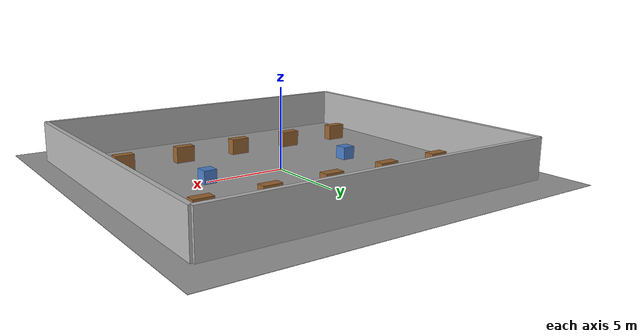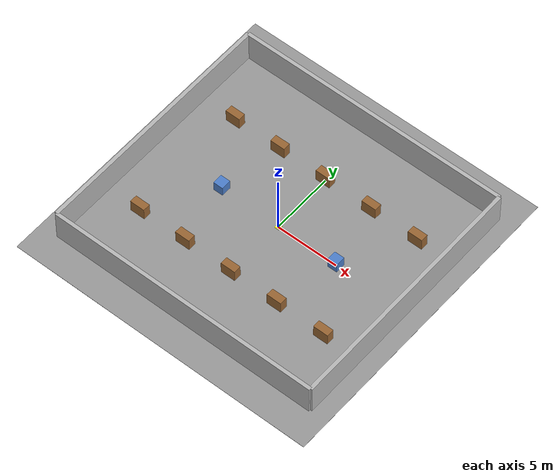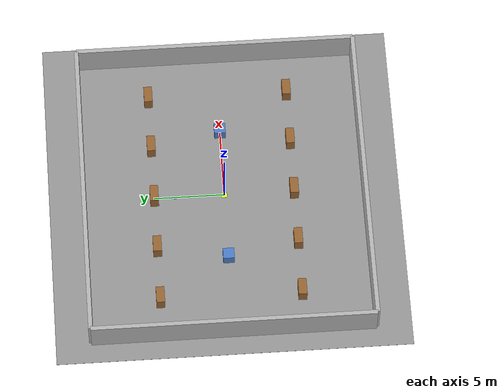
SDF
<?xml version="1.0" ?>
<!--
  TEST 3 — Mapping & Localization (harici model YOK, gzserver çökmesin)
  Duvarlar + basit kutu engeller; SLAM için yeterli.
-->
<sdf version="1.6">
  <world name="test_mapping">

    <physics type="ode">
      <real_time_update_rate>1000.0</real_time_update_rate>
      <max_step_size>0.001</max_step_size>
      <real_time_factor>1.0</real_time_factor>
    </physics>

    <scene>
      <ambient>0.4 0.4 0.4 1</ambient>
      <background>0.65 0.65 0.65 1</background>
      <shadows>true</shadows>
    </scene>

    <light name="sun" type="directional">
      <cast_shadows>true</cast_shadows>
      <pose>0 0 12 0 0 0</pose>
      <diffuse>0.85 0.85 0.85 1</diffuse>
      <specular>0.2 0.2 0.2 1</specular>
      <direction>-0.5 0.1 -0.9</direction>
    </light>

    <!-- Zemin (inline, model yok) -->
    <model name="ground_plane">
      <static>true</static>
      <pose>0 0 -0.01 0 0 0</pose>
      <link name="link">
        <collision name="col">
          <geometry><box><size>25 25 0.02</size></box></geometry>
        </collision>
        <visual name="vis">
          <geometry><box><size>25 25 0.02</size></box></geometry>
          <material><ambient>0.5 0.5 0.5 1</ambient><diffuse>0.6 0.6 0.6 1</diffuse></material>
        </visual>
      </link>
    </model>

    <!-- Dış Duvarlar -->
    <model name="wall_north">
      <static>true</static><pose>0 10 1.25 0 0 0</pose>
      <link name="link">
        <collision name="col"><geometry><box><size>22 0.3 2.5</size></box></geometry></collision>
        <visual name="vis">
          <geometry><box><size>22 0.3 2.5</size></box></geometry>
          <material><ambient>0.72 0.72 0.72 1</ambient></material>
        </visual>
      </link>
    </model>
    <model name="wall_south">
      <static>true</static><pose>0 -10 1.25 0 0 0</pose>
      <link name="link">
        <collision name="col"><geometry><box><size>22 0.3 2.5</size></box></geometry></collision>
        <visual name="vis">
          <geometry><box><size>22 0.3 2.5</size></box></geometry>
          <material><ambient>0.72 0.72 0.72 1</ambient></material>
        </visual>
      </link>
    </model>
    <model name="wall_east">
      <static>true</static><pose>11 0 1.25 0 0 0</pose>
      <link name="link">
        <collision name="col"><geometry><box><size>0.3 20 2.5</size></box></geometry></collision>
        <visual name="vis">
          <geometry><box><size>0.3 20 2.5</size></box></geometry>
          <material><ambient>0.72 0.72 0.72 1</ambient></material>
        </visual>
      </link>
    </model>
    <model name="wall_west">
      <static>true</static><pose>-11 0 1.25 0 0 0</pose>
      <link name="link">
        <collision name="col"><geometry><box><size>0.3 20 2.5</size></box></geometry></collision>
        <visual name="vis">
          <geometry><box><size>0.3 20 2.5</size></box></geometry>
          <material><ambient>0.72 0.72 0.72 1</ambient></material>
        </visual>
      </link>
    </model>

    <!-- Engel kutuları (raf yerine, SLAM için) -->
    <model name="obstacle_n1">
      <static>true</static><pose>-8 5 0.5 0 0 0</pose>
      <link name="link">
        <collision name="col"><geometry><box><size>1.2 0.6 1.0</size></box></geometry></collision>
        <visual name="vis"><geometry><box><size>1.2 0.6 1.0</size></box></geometry><material><ambient>0.6 0.4 0.2 1</ambient></material></visual>
      </link>
    </model>
    <model name="obstacle_n2">
      <static>true</static><pose>-4 5 0.5 0 0 0</pose>
      <link name="link">
        <collision name="col"><geometry><box><size>1.2 0.6 1.0</size></box></geometry></collision>
        <visual name="vis"><geometry><box><size>1.2 0.6 1.0</size></box></geometry><material><ambient>0.6 0.4 0.2 1</ambient></material></visual>
      </link>
    </model>
    <model name="obstacle_n3">
      <static>true</static><pose>0 5 0.5 0 0 0</pose>
      <link name="link">
        <collision name="col"><geometry><box><size>1.2 0.6 1.0</size></box></geometry></collision>
        <visual name="vis"><geometry><box><size>1.2 0.6 1.0</size></box></geometry><material><ambient>0.6 0.4 0.2 1</ambient></material></visual>
      </link>
    </model>
    <model name="obstacle_n4">
      <static>true</static><pose>4 5 0.5 0 0 0</pose>
      <link name="link">
        <collision name="col"><geometry><box><size>1.2 0.6 1.0</size></box></geometry></collision>
        <visual name="vis"><geometry><box><size>1.2 0.6 1.0</size></box></geometry><material><ambient>0.6 0.4 0.2 1</ambient></material></visual>
      </link>
    </model>
    <model name="obstacle_n5">
      <static>true</static><pose>8 5 0.5 0 0 0</pose>
      <link name="link">
        <collision name="col"><geometry><box><size>1.2 0.6 1.0</size></box></geometry></collision>
        <visual name="vis"><geometry><box><size>1.2 0.6 1.0</size></box></geometry><material><ambient>0.6 0.4 0.2 1</ambient></material></visual>
      </link>
    </model>
    <model name="obstacle_s1">
      <static>true</static><pose>-8 -5 0.5 0 0 0</pose>
      <link name="link">
        <collision name="col"><geometry><box><size>1.2 0.6 1.0</size></box></geometry></collision>
        <visual name="vis"><geometry><box><size>1.2 0.6 1.0</size></box></geometry><material><ambient>0.6 0.4 0.2 1</ambient></material></visual>
      </link>
    </model>
    <model name="obstacle_s2">
      <static>true</static><pose>-4 -5 0.5 0 0 0</pose>
      <link name="link">
        <collision name="col"><geometry><box><size>1.2 0.6 1.0</size></box></geometry></collision>
        <visual name="vis"><geometry><box><size>1.2 0.6 1.0</size></box></geometry><material><ambient>0.6 0.4 0.2 1</ambient></material></visual>
      </link>
    </model>
    <model name="obstacle_s3">
      <static>true</static><pose>0 -5 0.5 0 0 0</pose>
      <link name="link">
        <collision name="col"><geometry><box><size>1.2 0.6 1.0</size></box></geometry></collision>
        <visual name="vis"><geometry><box><size>1.2 0.6 1.0</size></box></geometry><material><ambient>0.6 0.4 0.2 1</ambient></material></visual>
      </link>
    </model>
    <model name="obstacle_s4">
      <static>true</static><pose>4 -5 0.5 0 0 0</pose>
      <link name="link">
        <collision name="col"><geometry><box><size>1.2 0.6 1.0</size></box></geometry></collision>
        <visual name="vis"><geometry><box><size>1.2 0.6 1.0</size></box></geometry><material><ambient>0.6 0.4 0.2 1</ambient></material></visual>
      </link>
    </model>
    <model name="obstacle_s5">
      <static>true</static><pose>8 -5 0.5 0 0 0</pose>
      <link name="link">
        <collision name="col"><geometry><box><size>1.2 0.6 1.0</size></box></geometry></collision>
        <visual name="vis"><geometry><box><size>1.2 0.6 1.0</size></box></geometry><material><ambient>0.6 0.4 0.2 1</ambient></material></visual>
      </link>
    </model>
    <model name="obstacle_center_l">
      <static>true</static><pose>-5 0 0.4 0 0 0</pose>
      <link name="link">
        <collision name="col"><geometry><box><size>0.8 0.8 0.8</size></box></geometry></collision>
        <visual name="vis"><geometry><box><size>0.8 0.8 0.8</size></box></geometry><material><ambient>0.3 0.5 0.8 1</ambient></material></visual>
      </link>
    </model>
    <model name="obstacle_center_r">
      <static>true</static><pose>5 0 0.4 0 0 0</pose>
      <link name="link">
        <collision name="col"><geometry><box><size>0.8 0.8 0.8</size></box></geometry></collision>
        <visual name="vis"><geometry><box><size>0.8 0.8 0.8</size></box></geometry><material><ambient>0.3 0.5 0.8 1</ambient></material></visual>
      </link>
    </model>

    <!-- Robot spawn işaretçisi (sarı kare) -->
    <model name="spawn_marker">
      <static>true</static>
      <pose>0 0 0.005 0 0 0</pose>
      <link name="link">
        <visual name="v">
          <geometry><box><size>0.4 0.4 0.01</size></box></geometry>
          <material><ambient>1 1 0 1</ambient></material>
        </visual>
      </link>
    </model>

    <!-- Hedef noktaları (mavi) -->
    <model name="goal_marker_1">
      <static>true</static>
      <pose>5 0 0.005 0 0 0</pose>
      <link name="link">
        <visual name="v">
          <geometry><box><size>0.2 0.2 0.01</size></box></geometry>
          <material><ambient>0 0.5 1 1</ambient></material>
        </visual>
      </link>
    </model>
    <model name="goal_marker_2">
      <static>true</static>
      <pose>-5 0 0.005 0 0 0</pose>
      <link name="link">
        <visual name="v">
          <geometry><box><size>0.2 0.2 0.01</size></box></geometry>
          <material><ambient>0 0.5 1 1</ambient></material>
        </visual>
      </link>
    </model>
    <model name="goal_marker_3">
      <static>true</static>
      <pose>0 3.5 0.005 0 0 0</pose>
      <link name="link">
        <visual name="v">
          <geometry><box><size>0.2 0.2 0.01</size></box></geometry>
          <material><ambient>0 0.5 1 1</ambient></material>
        </visual>
      </link>
    </model>

    <gui fullscreen="0">
      <camera name="user_camera">
        <pose>-14 -14 20 0 0.88 0.785</pose>
        <view_controller>orbit</view_controller>
      </camera>
    </gui>

  </world>
</sdf>
